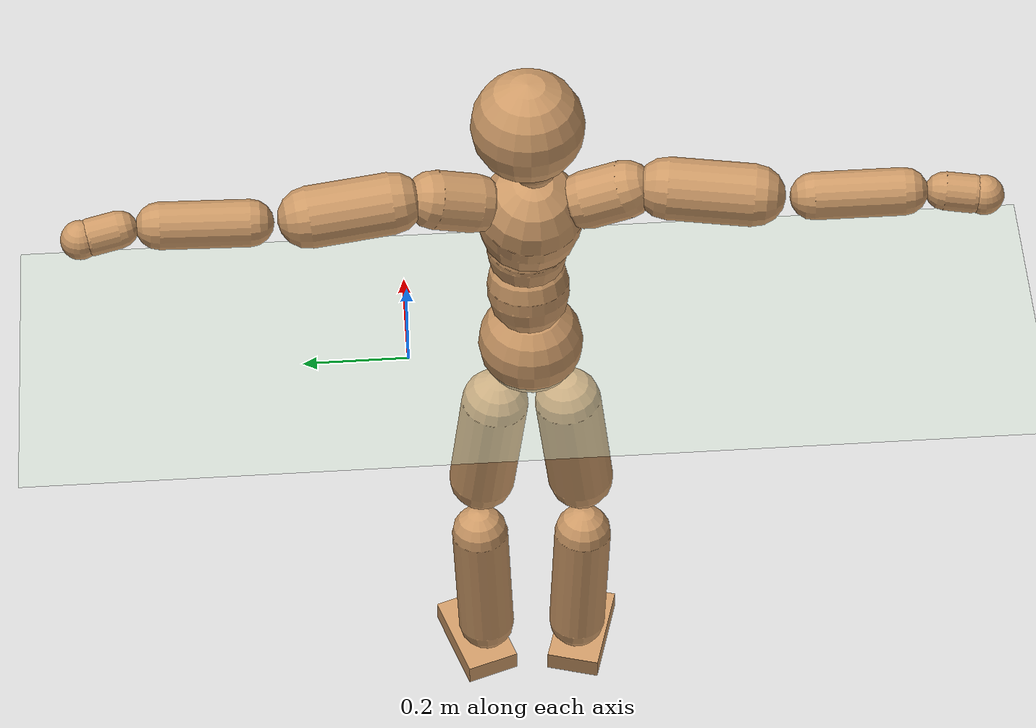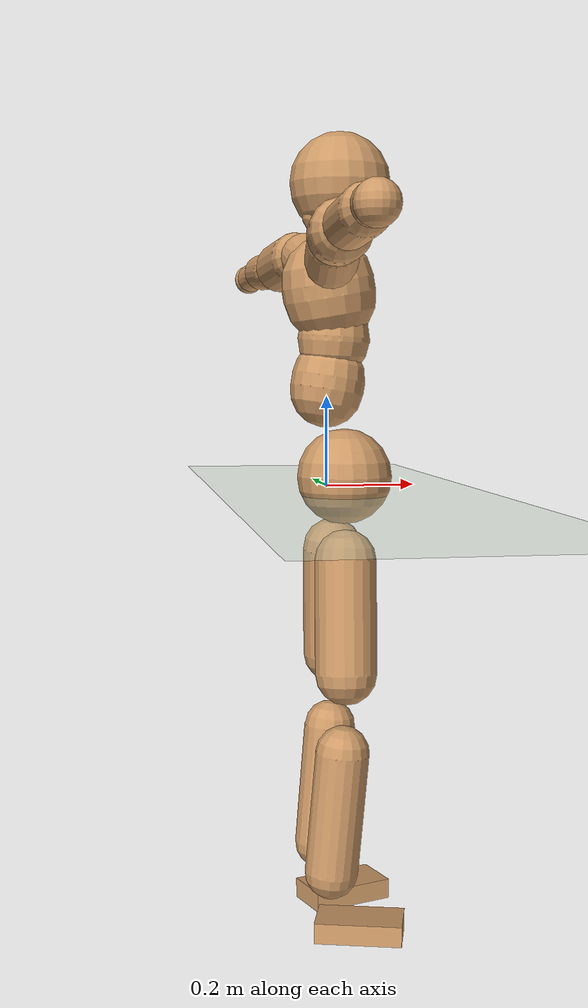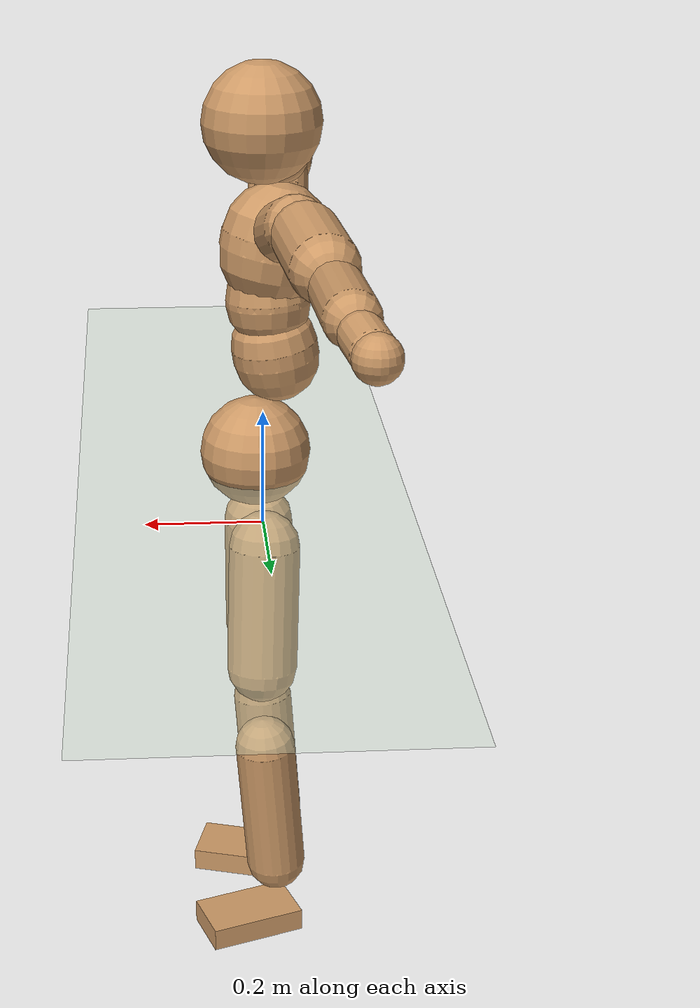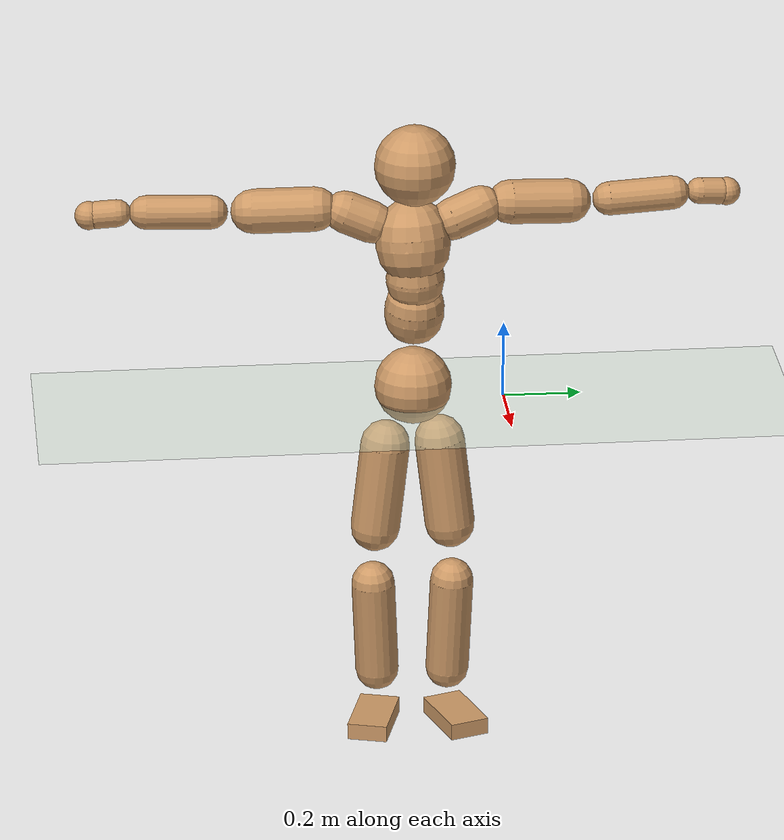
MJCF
<mujoco model="humanoid">
  <compiler coordinate="local"/>
  <default>
    <joint damping="0.0" armature="0.01" stiffness="0.0" limited="true"/>
    <geom conaffinity="1" condim="3" contype="7" margin="0.001" rgba="0.8 0.6 .4 1"/>
  </default>
  <asset>
    <texture type="skybox" builtin="gradient" rgb1=".4 .5 .6" rgb2="0 0 0" width="100" height="100"/>
    <texture builtin="flat" height="1278" mark="cross" markrgb="1 1 1" name="texgeom" random="0.01" rgb1="0.8 0.6 0.4" rgb2="0.8 0.6 0.4" type="cube" width="127"/>
    <texture builtin="checker" height="100" name="texplane" rgb1="0 0 0" rgb2="0.8 0.8 0.8" type="2d" width="100"/>
    <material name="MatPlane" reflectance="0.5" shininess="1" specular="1" texrepeat="60 60" texture="texplane"/>
    <material name="geom" texture="texgeom" texuniform="true"/>
  </asset>
  <worldbody>
    <light cutoff="100" diffuse="1 1 1" dir="-0 0 -1.3" directional="true" exponent="1" pos="0 0 1.3" specular=".1 .1 .1"/>
    <geom conaffinity="1" condim="3" name="floor" pos="0 0 0" rgba="0.8 0.9 0.8 1" size="100 100 .2" type="plane" material="MatPlane"/>
    <body name="Pelvis" pos="-0.0024 -0.2315 0.0379">
      <freejoint name="Pelvis"/>
      <geom type="sphere" contype="1" conaffinity="1" density="500" size="0.0995" pos="0.0000 0.0000 0.0000" name="Pelvis"/>
      <body name="L_Hip" pos="-0.014 0.0606 -0.0816">
        <joint name="L_Hip_x" type="hinge" pos="0 0 0" axis="1 0 0" stiffness="800" damping="80" armature="0.02" range="-180.0000 180.0000"/>
        <joint name="L_Hip_y" type="hinge" pos="0 0 0" axis="0 1 0" stiffness="800" damping="80" armature="0.02" range="-180.0000 180.0000"/>
        <joint name="L_Hip_z" type="hinge" pos="0 0 0" axis="0 0 1" stiffness="800" damping="80" armature="0.02" range="-180.0000 180.0000"/>
        <geom type="capsule" contype="1" conaffinity="1" density="500" fromto="0.0018 0.0089 -0.0780 0.0071 0.0356 -0.3121" size="0.0643" name="L_Hip"/>
        <body name="L_Knee" pos="0.0089 0.0446 -0.3901">
          <joint name="L_Knee_x" type="hinge" pos="0 0 0" axis="1 0 0" stiffness="800" damping="80" armature="0.02" range="-180.0000 180.0000"/>
          <joint name="L_Knee_y" type="hinge" pos="0 0 0" axis="0 1 0" stiffness="800" damping="80" armature="0.02" range="-180.0000 180.0000"/>
          <joint name="L_Knee_z" type="hinge" pos="0 0 0" axis="0 0 1" stiffness="800" damping="80" armature="0.02" range="-180.0000 180.0000"/>
          <geom type="capsule" contype="1" conaffinity="1" density="500" fromto="-0.0076 -0.0030 -0.0875 -0.0302 -0.0122 -0.3499" size="0.0559" name="L_Knee"/>
          <body name="L_Ankle" pos="-0.0378 -0.0152 -0.4373">
            <joint name="L_Ankle_x" type="hinge" pos="0 0 0" axis="1 0 0" stiffness="800" damping="80" armature="0.02" range="-180.0000 180.0000"/>
            <joint name="L_Ankle_y" type="hinge" pos="0 0 0" axis="0 1 0" stiffness="800" damping="80" armature="0.02" range="-180.0000 180.0000"/>
            <joint name="L_Ankle_z" type="hinge" pos="0 0 0" axis="0 0 1" stiffness="800" damping="80" armature="0.02" range="-180.0000 180.0000"/>
            <geom type="box" contype="1" conaffinity="1" density="500" pos="0.0610 0.0204 -0.0303" size="0.0902 0.0521 0.0216" quat="0.9871 0.0000 0.0000 0.1603" name="L_Ankle"/>
            <body name="L_Toe" pos="0.122 0.0407 -0.0606">
              <joint name="L_Toe_x" type="hinge" pos="0 0 0" axis="1 0 0" stiffness="500" damping="50" armature="0.02" range="-180.0000 180.0000"/>
              <joint name="L_Toe_y" type="hinge" pos="0 0 0" axis="0 1 0" stiffness="500" damping="50" armature="0.02" range="-180.0000 180.0000"/>
              <joint name="L_Toe_z" type="hinge" pos="0 0 0" axis="0 0 1" stiffness="500" damping="50" armature="0.02" range="-180.0000 180.0000"/>
              <geom type="box" contype="1" conaffinity="1" density="500" pos="0.0000 0.0000 0.0289" size="0.0011 0.0025 0.001" quat="0.9863 0.0000 0.0000 0.1651" name="L_Toe"/>
            </body>
          </body>
        </body>
      </body>
      <body name="R_Hip" pos="-0.0094 -0.0619 -0.0899">
        <joint name="R_Hip_x" type="hinge" pos="0 0 0" axis="1 0 0" stiffness="800" damping="80" armature="0.02" range="-180.0000 180.0000"/>
        <joint name="R_Hip_y" type="hinge" pos="0 0 0" axis="0 1 0" stiffness="800" damping="80" armature="0.02" range="-180.0000 180.0000"/>
        <joint name="R_Hip_z" type="hinge" pos="0 0 0" axis="0 0 1" stiffness="800" damping="80" armature="0.02" range="-180.0000 180.0000"/>
        <geom type="capsule" contype="1" conaffinity="1" density="500" fromto="-0.0010 -0.0088 -0.0775 -0.0040 -0.0350 -0.3102" size="0.0636" name="R_Hip"/>
        <body name="R_Knee" pos="-0.005 -0.0438 -0.3877">
          <joint name="R_Knee_x" type="hinge" pos="0 0 0" axis="1 0 0" stiffness="800" damping="80" armature="0.02" range="-180.0000 180.0000"/>
          <joint name="R_Knee_y" type="hinge" pos="0 0 0" axis="0 1 0" stiffness="800" damping="80" armature="0.02" range="-180.0000 180.0000"/>
          <joint name="R_Knee_z" type="hinge" pos="0 0 0" axis="0 0 1" stiffness="800" damping="80" armature="0.02" range="-180.0000 180.0000"/>
          <geom type="capsule" contype="1" conaffinity="1" density="500" fromto="-0.0071 0.0038 -0.0859 -0.0282 0.0152 -0.3437" size="0.056" name="R_Knee"/>
          <body name="R_Ankle" pos="-0.0353 0.019 -0.4297">
            <joint name="R_Ankle_x" type="hinge" pos="0 0 0" axis="1 0 0" stiffness="800" damping="80" armature="0.02" range="-180.0000 180.0000"/>
            <joint name="R_Ankle_y" type="hinge" pos="0 0 0" axis="0 1 0" stiffness="800" damping="80" armature="0.02" range="-180.0000 180.0000"/>
            <joint name="R_Ankle_z" type="hinge" pos="0 0 0" axis="0 0 1" stiffness="800" damping="80" armature="0.02" range="-180.0000 180.0000"/>
            <geom type="box" contype="1" conaffinity="1" density="500" pos="0.0649 -0.0184 -0.0308" size="0.0909 0.0517 0.0216" quat="0.9904 0.0000 0.0000 -0.1379" name="R_Ankle"/>
            <body name="R_Toe" pos="0.1298 -0.0369 -0.0615">
              <joint name="R_Toe_x" type="hinge" pos="0 0 0" axis="1 0 0" stiffness="500" damping="50" armature="0.02" range="-180.0000 180.0000"/>
              <joint name="R_Toe_y" type="hinge" pos="0 0 0" axis="0 1 0" stiffness="500" damping="50" armature="0.02" range="-180.0000 180.0000"/>
              <joint name="R_Toe_z" type="hinge" pos="0 0 0" axis="0 0 1" stiffness="500" damping="50" armature="0.02" range="-180.0000 180.0000"/>
              <geom type="box" contype="1" conaffinity="1" density="500" pos="0.0000 0.0000 0.0299" size="0.0011 0.0025 0.001" quat="0.9917 0.0000 0.0000 -0.1289" name="R_Toe"/>
            </body>
          </body>
        </body>
      </body>
      <body name="Torso" pos="-0.0458 0.0046 0.1251">
        <joint name="Torso_x" type="hinge" pos="0 0 0" axis="1 0 0" stiffness="1000" damping="100" armature="0.02" range="-180.0000 180.0000"/>
        <joint name="Torso_y" type="hinge" pos="0 0 0" axis="0 1 0" stiffness="1000" damping="100" armature="0.02" range="-180.0000 180.0000"/>
        <joint name="Torso_z" type="hinge" pos="0 0 0" axis="0 0 1" stiffness="1000" damping="100" armature="0.02" range="-180.0000 180.0000"/>
        <geom type="capsule" contype="1" conaffinity="1" density="500" fromto="0.0139 0.0024 0.0797 0.0093 0.0016 0.0531" size="0.076446" name="Torso"/>
        <body name="Spine" pos="0.0232 0.004 0.1328">
          <joint name="Spine_x" type="hinge" pos="0 0 0" axis="1 0 0" stiffness="1000" damping="100" armature="0.02" range="-180.0000 180.0000"/>
          <joint name="Spine_y" type="hinge" pos="0 0 0" axis="0 1 0" stiffness="1000" damping="100" armature="0.02" range="-180.0000 180.0000"/>
          <joint name="Spine_z" type="hinge" pos="0 0 0" axis="0 0 1" stiffness="1000" damping="100" armature="0.02" range="-180.0000 180.0000"/>
          <geom type="capsule" contype="1" conaffinity="1" density="500" fromto="0.0018 -0.0013 0.0322 0.0012 -0.0009 0.0215" size="0.074865" name="Spine"/>
          <body name="Chest" pos="0.0029 -0.0022 0.0537">
            <joint name="Chest_x" type="hinge" pos="0 0 0" axis="1 0 0" stiffness="1000" damping="100" armature="0.02" range="-180.0000 180.0000"/>
            <joint name="Chest_y" type="hinge" pos="0 0 0" axis="0 1 0" stiffness="1000" damping="100" armature="0.02" range="-180.0000 180.0000"/>
            <joint name="Chest_z" type="hinge" pos="0 0 0" axis="0 0 1" stiffness="1000" damping="100" armature="0.02" range="-180.0000 180.0000"/>
            <geom type="capsule" contype="1" conaffinity="1" density="500" fromto="-0.0156 -0.0044 0.0860 -0.0104 -0.0030 0.0574" size="0.09579" name="Chest"/>
            <body name="Neck" pos="-0.0364 -0.0121 0.2055">
              <joint name="Neck_x" type="hinge" pos="0 0 0" axis="1 0 0" stiffness="500" damping="50" armature="0.02" range="-180.0000 180.0000"/>
              <joint name="Neck_y" type="hinge" pos="0 0 0" axis="0 1 0" stiffness="500" damping="50" armature="0.02" range="-180.0000 180.0000"/>
              <joint name="Neck_z" type="hinge" pos="0 0 0" axis="0 0 1" stiffness="500" damping="50" armature="0.02" range="-180.0000 180.0000"/>
              <geom type="capsule" contype="1" conaffinity="1" density="500" fromto="0.0094 0.0022 0.0158 0.0375 0.0089 0.0633" size="0.042036" name="Neck"/>
              <body name="Head" pos="0.0469 0.0112 0.0791">
                <joint name="Head_x" type="hinge" pos="0 0 0" axis="1 0 0" stiffness="500" damping="50" armature="0.02" range="-180.0000 180.0000"/>
                <joint name="Head_y" type="hinge" pos="0 0 0" axis="0 1 0" stiffness="500" damping="50" armature="0.02" range="-180.0000 180.0000"/>
                <joint name="Head_z" type="hinge" pos="0 0 0" axis="0 0 1" stiffness="500" damping="50" armature="0.02" range="-180.0000 180.0000"/>
                <geom type="sphere" contype="1" conaffinity="1" density="500" size="0.1036" pos="0.0000 0.0000 0.0000" name="Head"/>
              </body>
            </body>
            <body name="L_Thorax" pos="-0.0181 0.0728 0.1135">
              <joint name="L_Thorax_x" type="hinge" pos="0 0 0" axis="1 0 0" stiffness="500" damping="50" armature="0.02" range="-180.0000 180.0000"/>
              <joint name="L_Thorax_y" type="hinge" pos="0 0 0" axis="0 1 0" stiffness="500" damping="50" armature="0.02" range="-180.0000 180.0000"/>
              <joint name="L_Thorax_z" type="hinge" pos="0 0 0" axis="0 0 1" stiffness="500" damping="50" armature="0.02" range="-180.0000 180.0000"/>
              <geom type="capsule" contype="1" conaffinity="1" density="500" fromto="-0.0039 0.0248 0.0092 -0.0156 0.0990 0.0369" size="0.0539" name="L_Thorax"/>
              <body name="L_Shoulder" pos="-0.0196 0.1238 0.0461">
                <joint name="L_Shoulder_x" type="hinge" pos="0 0 0" axis="1 0 0" stiffness="500" damping="50" armature="0.02" range="-720.0000 720.0000"/>
                <joint name="L_Shoulder_y" type="hinge" pos="0 0 0" axis="0 1 0" stiffness="500" damping="50" armature="0.02" range="-720.0000 720.0000"/>
                <joint name="L_Shoulder_z" type="hinge" pos="0 0 0" axis="0 0 1" stiffness="500" damping="50" armature="0.02" range="-720.0000 720.0000"/>
                <geom type="capsule" contype="1" conaffinity="1" density="500" fromto="-0.0053 0.0505 -0.0030 -0.0210 0.2020 -0.0121" size="0.0567" name="L_Shoulder"/>
                <body name="L_Elbow" pos="-0.0263 0.2526 -0.0151">
                  <joint name="L_Elbow_x" type="hinge" pos="0 0 0" axis="1 0 0" stiffness="500" damping="50" armature="0.02" range="-720.0000 720.0000"/>
                  <joint name="L_Elbow_y" type="hinge" pos="0 0 0" axis="0 1 0" stiffness="500" damping="50" armature="0.02" range="-720.0000 720.0000"/>
                  <joint name="L_Elbow_z" type="hinge" pos="0 0 0" axis="0 0 1" stiffness="500" damping="50" armature="0.02" range="-720.0000 720.0000"/>
                  <geom type="capsule" contype="1" conaffinity="1" density="500" fromto="-0.0013 0.0541 0.0029 -0.0052 0.2166 0.0115" size="0.0432" name="L_Elbow"/>
                  <body name="L_Wrist" pos="-0.0065 0.2707 0.0143">
                    <joint name="L_Wrist_x" type="hinge" pos="0 0 0" axis="1 0 0" stiffness="300" damping="30" armature="0.02" range="-180.0000 180.0000"/>
                    <joint name="L_Wrist_y" type="hinge" pos="0 0 0" axis="0 1 0" stiffness="300" damping="30" armature="0.02" range="-180.0000 180.0000"/>
                    <joint name="L_Wrist_z" type="hinge" pos="0 0 0" axis="0 0 1" stiffness="300" damping="30" armature="0.02" range="-180.0000 180.0000"/>
                    <geom type="capsule" contype="1" conaffinity="1" density="500" fromto="-0.0032 0.0175 -0.0022 -0.0127 0.0701 -0.0086" size="0.0344" name="L_Wrist"/>
                    <body name="L_Hand" pos="-0.0158 0.0876 -0.0108">
                      <joint name="L_Hand_x" type="hinge" pos="0 0 0" axis="1 0 0" stiffness="300" damping="30" armature="0.02" range="-180.0000 180.0000"/>
                      <joint name="L_Hand_y" type="hinge" pos="0 0 0" axis="0 1 0" stiffness="300" damping="30" armature="0.02" range="-180.0000 180.0000"/>
                      <joint name="L_Hand_z" type="hinge" pos="0 0 0" axis="0 0 1" stiffness="300" damping="30" armature="0.02" range="-180.0000 180.0000"/>
                      <geom type="sphere" contype="1" conaffinity="1" density="500" size="0.0359" pos="0.0000 0.0000 0.0000" name="L_Hand"/>
                    </body>
                  </body>
                </body>
              </body>
            </body>
            <body name="R_Thorax" pos="-0.0235 -0.083 0.1112">
              <joint name="R_Thorax_x" type="hinge" pos="0 0 0" axis="1 0 0" stiffness="500" damping="50" armature="0.02" range="-180.0000 180.0000"/>
              <joint name="R_Thorax_y" type="hinge" pos="0 0 0" axis="0 1 0" stiffness="500" damping="50" armature="0.02" range="-180.0000 180.0000"/>
              <joint name="R_Thorax_z" type="hinge" pos="0 0 0" axis="0 0 1" stiffness="500" damping="50" armature="0.02" range="-180.0000 180.0000"/>
              <geom type="capsule" contype="1" conaffinity="1" density="500" fromto="-0.0019 -0.0228 0.0096 -0.0077 -0.0912 0.0384" size="0.0538" name="R_Thorax"/>
              <body name="R_Shoulder" pos="-0.0096 -0.114 0.0479">
                <joint name="R_Shoulder_x" type="hinge" pos="0 0 0" axis="1 0 0" stiffness="500" damping="50" armature="0.02" range="-720.0000 720.0000"/>
                <joint name="R_Shoulder_y" type="hinge" pos="0 0 0" axis="0 1 0" stiffness="500" damping="50" armature="0.02" range="-720.0000 720.0000"/>
                <joint name="R_Shoulder_z" type="hinge" pos="0 0 0" axis="0 0 1" stiffness="500" damping="50" armature="0.02" range="-720.0000 720.0000"/>
                <geom type="capsule" contype="1" conaffinity="1" density="500" fromto="-0.0067 -0.0522 -0.0028 -0.0270 -0.2087 -0.0110" size="0.0573" name="R_Shoulder"/>
                <body name="R_Elbow" pos="-0.0337 -0.2609 -0.0138">
                  <joint name="R_Elbow_x" type="hinge" pos="0 0 0" axis="1 0 0" stiffness="500" damping="50" armature="0.02" range="-720.0000 720.0000"/>
                  <joint name="R_Elbow_y" type="hinge" pos="0 0 0" axis="0 1 0" stiffness="500" damping="50" armature="0.02" range="-720.0000 720.0000"/>
                  <joint name="R_Elbow_z" type="hinge" pos="0 0 0" axis="0 0 1" stiffness="500" damping="50" armature="0.02" range="-720.0000 720.0000"/>
                  <geom type="capsule" contype="1" conaffinity="1" density="500" fromto="-0.0011 -0.0545 0.0014 -0.0046 -0.2181 0.0055" size="0.0435" name="R_Elbow"/>
                  <body name="R_Wrist" pos="-0.0057 -0.2726 0.0068">
                    <joint name="R_Wrist_x" type="hinge" pos="0 0 0" axis="1 0 0" stiffness="300" damping="30" armature="0.02" range="-180.0000 180.0000"/>
                    <joint name="R_Wrist_y" type="hinge" pos="0 0 0" axis="0 1 0" stiffness="300" damping="30" armature="0.02" range="-180.0000 180.0000"/>
                    <joint name="R_Wrist_z" type="hinge" pos="0 0 0" axis="0 0 1" stiffness="300" damping="30" armature="0.02" range="-180.0000 180.0000"/>
                    <geom type="capsule" contype="1" conaffinity="1" density="500" fromto="-0.0021 -0.0180 -0.0018 -0.0083 -0.0718 -0.0071" size="0.0351" name="R_Wrist"/>
                    <body name="R_Hand" pos="-0.0104 -0.0898 -0.0088">
                      <joint name="R_Hand_x" type="hinge" pos="0 0 0" axis="1 0 0" stiffness="300" damping="30" armature="0.02" range="-180.0000 180.0000"/>
                      <joint name="R_Hand_y" type="hinge" pos="0 0 0" axis="0 1 0" stiffness="300" damping="30" armature="0.02" range="-180.0000 180.0000"/>
                      <joint name="R_Hand_z" type="hinge" pos="0 0 0" axis="0 0 1" stiffness="300" damping="30" armature="0.02" range="-180.0000 180.0000"/>
                      <geom type="sphere" contype="1" conaffinity="1" density="500" size="0.0364" pos="0.0000 0.0000 0.0000" name="R_Hand"/>
                    </body>
                  </body>
                </body>
              </body>
            </body>
          </body>
        </body>
      </body>
    </body>
  </worldbody>
  <actuator>
    <motor name="L_Hip_x" joint="L_Hip_x" gear="500"/>
    <motor name="L_Hip_y" joint="L_Hip_y" gear="500"/>
    <motor name="L_Hip_z" joint="L_Hip_z" gear="500"/>
    <motor name="L_Knee_x" joint="L_Knee_x" gear="500"/>
    <motor name="L_Knee_y" joint="L_Knee_y" gear="500"/>
    <motor name="L_Knee_z" joint="L_Knee_z" gear="500"/>
    <motor name="L_Ankle_x" joint="L_Ankle_x" gear="500"/>
    <motor name="L_Ankle_y" joint="L_Ankle_y" gear="500"/>
    <motor name="L_Ankle_z" joint="L_Ankle_z" gear="500"/>
    <motor name="L_Toe_x" joint="L_Toe_x" gear="500"/>
    <motor name="L_Toe_y" joint="L_Toe_y" gear="500"/>
    <motor name="L_Toe_z" joint="L_Toe_z" gear="500"/>
    <motor name="R_Hip_x" joint="R_Hip_x" gear="500"/>
    <motor name="R_Hip_y" joint="R_Hip_y" gear="500"/>
    <motor name="R_Hip_z" joint="R_Hip_z" gear="500"/>
    <motor name="R_Knee_x" joint="R_Knee_x" gear="500"/>
    <motor name="R_Knee_y" joint="R_Knee_y" gear="500"/>
    <motor name="R_Knee_z" joint="R_Knee_z" gear="500"/>
    <motor name="R_Ankle_x" joint="R_Ankle_x" gear="500"/>
    <motor name="R_Ankle_y" joint="R_Ankle_y" gear="500"/>
    <motor name="R_Ankle_z" joint="R_Ankle_z" gear="500"/>
    <motor name="R_Toe_x" joint="R_Toe_x" gear="500"/>
    <motor name="R_Toe_y" joint="R_Toe_y" gear="500"/>
    <motor name="R_Toe_z" joint="R_Toe_z" gear="500"/>
    <motor name="Torso_x" joint="Torso_x" gear="500"/>
    <motor name="Torso_y" joint="Torso_y" gear="500"/>
    <motor name="Torso_z" joint="Torso_z" gear="500"/>
    <motor name="Spine_x" joint="Spine_x" gear="500"/>
    <motor name="Spine_y" joint="Spine_y" gear="500"/>
    <motor name="Spine_z" joint="Spine_z" gear="500"/>
    <motor name="Chest_x" joint="Chest_x" gear="500"/>
    <motor name="Chest_y" joint="Chest_y" gear="500"/>
    <motor name="Chest_z" joint="Chest_z" gear="500"/>
    <motor name="Neck_x" joint="Neck_x" gear="500"/>
    <motor name="Neck_y" joint="Neck_y" gear="500"/>
    <motor name="Neck_z" joint="Neck_z" gear="500"/>
    <motor name="Head_x" joint="Head_x" gear="500"/>
    <motor name="Head_y" joint="Head_y" gear="500"/>
    <motor name="Head_z" joint="Head_z" gear="500"/>
    <motor name="L_Thorax_x" joint="L_Thorax_x" gear="500"/>
    <motor name="L_Thorax_y" joint="L_Thorax_y" gear="500"/>
    <motor name="L_Thorax_z" joint="L_Thorax_z" gear="500"/>
    <motor name="L_Shoulder_x" joint="L_Shoulder_x" gear="500"/>
    <motor name="L_Shoulder_y" joint="L_Shoulder_y" gear="500"/>
    <motor name="L_Shoulder_z" joint="L_Shoulder_z" gear="500"/>
    <motor name="L_Elbow_x" joint="L_Elbow_x" gear="500"/>
    <motor name="L_Elbow_y" joint="L_Elbow_y" gear="500"/>
    <motor name="L_Elbow_z" joint="L_Elbow_z" gear="500"/>
    <motor name="L_Wrist_x" joint="L_Wrist_x" gear="500"/>
    <motor name="L_Wrist_y" joint="L_Wrist_y" gear="500"/>
    <motor name="L_Wrist_z" joint="L_Wrist_z" gear="500"/>
    <motor name="L_Hand_x" joint="L_Hand_x" gear="500"/>
    <motor name="L_Hand_y" joint="L_Hand_y" gear="500"/>
    <motor name="L_Hand_z" joint="L_Hand_z" gear="500"/>
    <motor name="R_Thorax_x" joint="R_Thorax_x" gear="500"/>
    <motor name="R_Thorax_y" joint="R_Thorax_y" gear="500"/>
    <motor name="R_Thorax_z" joint="R_Thorax_z" gear="500"/>
    <motor name="R_Shoulder_x" joint="R_Shoulder_x" gear="500"/>
    <motor name="R_Shoulder_y" joint="R_Shoulder_y" gear="500"/>
    <motor name="R_Shoulder_z" joint="R_Shoulder_z" gear="500"/>
    <motor name="R_Elbow_x" joint="R_Elbow_x" gear="500"/>
    <motor name="R_Elbow_y" joint="R_Elbow_y" gear="500"/>
    <motor name="R_Elbow_z" joint="R_Elbow_z" gear="500"/>
    <motor name="R_Wrist_x" joint="R_Wrist_x" gear="500"/>
    <motor name="R_Wrist_y" joint="R_Wrist_y" gear="500"/>
    <motor name="R_Wrist_z" joint="R_Wrist_z" gear="500"/>
    <motor name="R_Hand_x" joint="R_Hand_x" gear="500"/>
    <motor name="R_Hand_y" joint="R_Hand_y" gear="500"/>
    <motor name="R_Hand_z" joint="R_Hand_z" gear="500"/>
  </actuator>
  <contact>
    <exclude body1="Torso" body2="Chest"/>
    <exclude body1="Head" body2="Chest"/>
    <exclude body1="R_Knee" body2="R_Toe"/>
    <exclude body1="R_Knee" body2="L_Ankle"/>
    <exclude body1="R_Knee" body2="L_Toe"/>
    <exclude body1="L_Knee" body2="L_Toe"/>
    <exclude body1="L_Knee" body2="R_Ankle"/>
    <exclude body1="L_Knee" body2="R_Toe"/>
    <exclude body1="L_Shoulder" body2="Chest"/>
    <exclude body1="R_Shoulder" body2="Chest"/>
  </contact>
  <sensor/>
  <size njmax="700" nconmax="700"/>
</mujoco>
